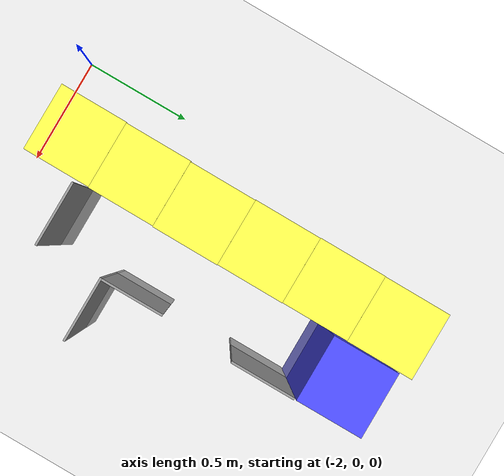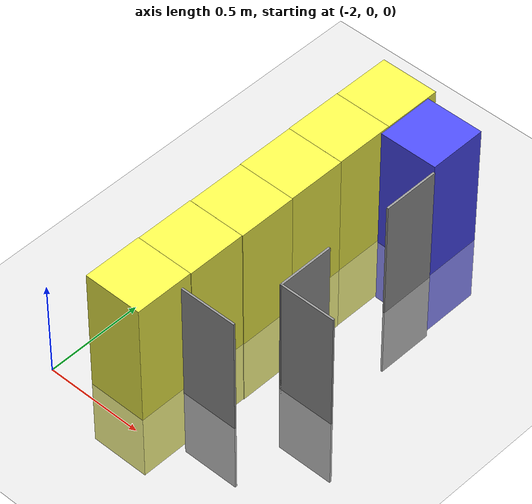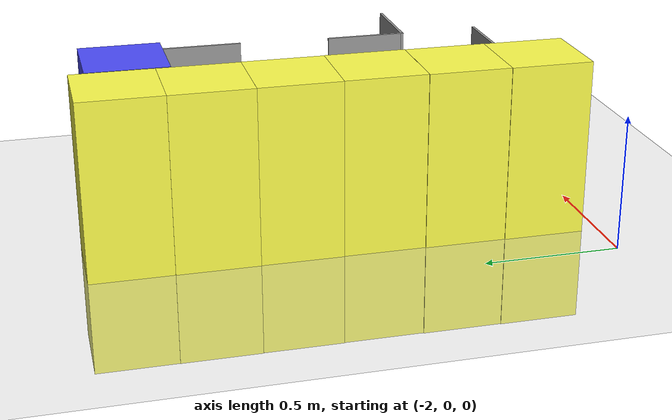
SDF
<sdf version="1.7">
 <world name="default">
  <model name="ground_plane">
   <static>1</static>
   <link name="link">
    <collision name="collision">
     <geometry><plane><normal>0 0 1</normal><size>100 100</size></plane></geometry>
     <surface><friction><ode><mu>100</mu><mu2>50</mu2></ode></friction></surface>
    </collision>
    <visual name="visual">
     <cast_shadows>0</cast_shadows>
     <geometry><plane><normal>0 0 1</normal><size>100 100</size></plane></geometry>
     <material>
      <script><uri>file://media/materials/scripts/gazebo.material</uri><name>Gazebo/Grey</name></script>
     </material>
    </visual>
   </link>
  </model>
  <model name="Box_Yellow_clone_2">
   <link name="link_0">
    <inertial>
     <mass>1</mass>
     <inertia>
      <ixx>0.166667</ixx>
      <ixy>0</ixy>
      <ixz>0</ixz>
      <iyy>0.166667</iyy>
      <iyz>0</iyz>
      <izz>0.166667</izz>
     </inertia>
    </inertial>
    <visual name="visual">
     <geometry><box><size>0.3 0.3 1.0</size></box></geometry>
     <material>
      <lighting>1</lighting>
      <script><uri>file://media/materials/scripts/gazebo.material</uri><name>Gazebo/Grey</name></script>
      <ambient>1 1 0.3 1</ambient>
      <diffuse>0.7 0.7 0.7 1</diffuse>
      <specular>0.01 0.01 0.01 1</specular>
      <emissive>0 0 0 1</emissive>
      <shader type="vertex"><normal_map>__default__</normal_map></shader>
     </material>
    </visual>
    <collision name="collision">
     <geometry><box><size>0.3 0.3 1.0</size></box></geometry>
     <surface>
      <friction>
       <ode><mu>1</mu><mu2>1</mu2><fdir1>0 0 0</fdir1><slip1>0</slip1><slip2>0</slip2></ode>
       <torsional>
        <coefficient>1</coefficient>
        <patch_radius>0</patch_radius>
        <surface_radius>0</surface_radius>
        <use_patch_radius>1</use_patch_radius>
        <ode><slip>0</slip></ode>
       </torsional>
      </friction>
      <bounce><restitution_coefficient>0</restitution_coefficient><threshold>1e+06</threshold></bounce>
      <contact>
       <collide_without_contact>0</collide_without_contact>
       <collide_without_contact_bitmask>1</collide_without_contact_bitmask>
       <collide_bitmask>1</collide_bitmask>
       <ode>
        <soft_cfm>0</soft_cfm>
        <soft_erp>0.2</soft_erp>
        <kp>1e+13</kp>
        <kd>1</kd>
        <max_vel>0.01</max_vel>
        <min_depth>0</min_depth>
       </ode>
       <bullet>
        <split_impulse>1</split_impulse>
        <split_impulse_penetration_threshold>-0.01</split_impulse_penetration_threshold>
        <soft_cfm>0</soft_cfm>
        <soft_erp>0.2</soft_erp>
        <kp>1e+13</kp>
        <kd>1</kd>
       </bullet>
      </contact>
     </surface>
    </collision>
   </link>
   <static>0</static>
   <pose>-1.67182 0.210538 0.15 -0 -0 -0.002825</pose>
  </model>
  <model name="Box_Yellow_clone_3">
   <link name="link_0">
    <inertial>
     <mass>1</mass>
     <inertia>
      <ixx>0.166667</ixx>
      <ixy>0</ixy>
      <ixz>0</ixz>
      <iyy>0.166667</iyy>
      <iyz>0</iyz>
      <izz>0.166667</izz>
     </inertia>
    </inertial>
    <visual name="visual">
     <geometry><box><size>0.3 0.3 1.0</size></box></geometry>
     <material>
      <lighting>1</lighting>
      <script><uri>file://media/materials/scripts/gazebo.material</uri><name>Gazebo/Grey</name></script>
      <ambient>1 1 0.3 1</ambient>
      <diffuse>0.7 0.7 0.7 1</diffuse>
      <specular>0.01 0.01 0.01 1</specular>
      <emissive>0 0 0 1</emissive>
      <shader type="vertex"><normal_map>__default__</normal_map></shader>
     </material>
    </visual>
    <collision name="collision">
     <geometry><box><size>0.3 0.3 1.0</size></box></geometry>
     <surface>
      <friction>
       <ode><mu>1</mu><mu2>1</mu2><fdir1>0 0 0</fdir1><slip1>0</slip1><slip2>0</slip2></ode>
       <torsional>
        <coefficient>1</coefficient>
        <patch_radius>0</patch_radius>
        <surface_radius>0</surface_radius>
        <use_patch_radius>1</use_patch_radius>
        <ode><slip>0</slip></ode>
       </torsional>
      </friction>
      <bounce><restitution_coefficient>0</restitution_coefficient><threshold>1e+06</threshold></bounce>
      <contact>
       <collide_without_contact>0</collide_without_contact>
       <collide_without_contact_bitmask>1</collide_without_contact_bitmask>
       <collide_bitmask>1</collide_bitmask>
       <ode>
        <soft_cfm>0</soft_cfm>
        <soft_erp>0.2</soft_erp>
        <kp>1e+13</kp>
        <kd>1</kd>
        <max_vel>0.01</max_vel>
        <min_depth>0</min_depth>
       </ode>
       <bullet>
        <split_impulse>1</split_impulse>
        <split_impulse_penetration_threshold>-0.01</split_impulse_penetration_threshold>
        <soft_cfm>0</soft_cfm>
        <soft_erp>0.2</soft_erp>
        <kp>1e+13</kp>
        <kd>1</kd>
       </bullet>
      </contact>
     </surface>
    </collision>
   </link>
   <static>0</static>
   <pose>-1.66837 0.510539 0.15 0 0 -0.002799</pose>
  </model>
  <model name="Box_Yellow_clone_4">
   <link name="link_0">
    <inertial>
     <mass>1</mass>
     <inertia>
      <ixx>0.166667</ixx>
      <ixy>0</ixy>
      <ixz>0</ixz>
      <iyy>0.166667</iyy>
      <iyz>0</iyz>
      <izz>0.166667</izz>
     </inertia>
    </inertial>
    <visual name="visual">
     <geometry><box><size>0.3 0.3 1.0</size></box></geometry>
     <material>
      <lighting>1</lighting>
      <script><uri>file://media/materials/scripts/gazebo.material</uri><name>Gazebo/Grey</name></script>
      <ambient>1 1 0.3 1</ambient>
      <diffuse>0.7 0.7 0.7 1</diffuse>
      <specular>0.01 0.01 0.01 1</specular>
      <emissive>0 0 0 1</emissive>
      <shader type="vertex"><normal_map>__default__</normal_map></shader>
     </material>
    </visual>
    <collision name="collision">
     <geometry><box><size>0.3 0.3 1.0</size></box></geometry>
     <surface>
      <friction>
       <ode><mu>1</mu><mu2>1</mu2><fdir1>0 0 0</fdir1><slip1>0</slip1><slip2>0</slip2></ode>
       <torsional>
        <coefficient>1</coefficient>
        <patch_radius>0</patch_radius>
        <surface_radius>0</surface_radius>
        <use_patch_radius>1</use_patch_radius>
        <ode><slip>0</slip></ode>
       </torsional>
      </friction>
      <bounce><restitution_coefficient>0</restitution_coefficient><threshold>1e+06</threshold></bounce>
      <contact>
       <collide_without_contact>0</collide_without_contact>
       <collide_without_contact_bitmask>1</collide_without_contact_bitmask>
       <collide_bitmask>1</collide_bitmask>
       <ode>
        <soft_cfm>0</soft_cfm>
        <soft_erp>0.2</soft_erp>
        <kp>1e+13</kp>
        <kd>1</kd>
        <max_vel>0.01</max_vel>
        <min_depth>0</min_depth>
       </ode>
       <bullet>
        <split_impulse>1</split_impulse>
        <split_impulse_penetration_threshold>-0.01</split_impulse_penetration_threshold>
        <soft_cfm>0</soft_cfm>
        <soft_erp>0.2</soft_erp>
        <kp>1e+13</kp>
        <kd>1</kd>
       </bullet>
      </contact>
     </surface>
    </collision>
   </link>
   <static>0</static>
   <pose>-1.66457 0.810599 0.15 -0 -0 -0.003185</pose>
  </model>
  <model name="Box_Yellow_clone_5">
   <link name="link_0">
    <inertial>
     <mass>1</mass>
     <inertia>
      <ixx>0.166667</ixx>
      <ixy>0</ixy>
      <ixz>0</ixz>
      <iyy>0.166667</iyy>
      <iyz>0</iyz>
      <izz>0.166667</izz>
     </inertia>
    </inertial>
    <visual name="visual">
     <geometry><box><size>0.3 0.3 1.0</size></box></geometry>
     <material>
      <lighting>1</lighting>
      <script><uri>file://media/materials/scripts/gazebo.material</uri><name>Gazebo/Grey</name></script>
      <ambient>1 1 0.3 1</ambient>
      <diffuse>0.7 0.7 0.7 1</diffuse>
      <specular>0.01 0.01 0.01 1</specular>
      <emissive>0 0 0 1</emissive>
      <shader type="vertex"><normal_map>__default__</normal_map></shader>
     </material>
    </visual>
    <collision name="collision">
     <geometry><box><size>0.3 0.3 1.0</size></box></geometry>
     <surface>
      <friction>
       <ode><mu>1</mu><mu2>1</mu2><fdir1>0 0 0</fdir1><slip1>0</slip1><slip2>0</slip2></ode>
       <torsional>
        <coefficient>1</coefficient>
        <patch_radius>0</patch_radius>
        <surface_radius>0</surface_radius>
        <use_patch_radius>1</use_patch_radius>
        <ode><slip>0</slip></ode>
       </torsional>
      </friction>
      <bounce><restitution_coefficient>0</restitution_coefficient><threshold>1e+06</threshold></bounce>
      <contact>
       <collide_without_contact>0</collide_without_contact>
       <collide_without_contact_bitmask>1</collide_without_contact_bitmask>
       <collide_bitmask>1</collide_bitmask>
       <ode>
        <soft_cfm>0</soft_cfm>
        <soft_erp>0.2</soft_erp>
        <kp>1e+13</kp>
        <kd>1</kd>
        <max_vel>0.01</max_vel>
        <min_depth>0</min_depth>
       </ode>
       <bullet>
        <split_impulse>1</split_impulse>
        <split_impulse_penetration_threshold>-0.01</split_impulse_penetration_threshold>
        <soft_cfm>0</soft_cfm>
        <soft_erp>0.2</soft_erp>
        <kp>1e+13</kp>
        <kd>1</kd>
       </bullet>
      </contact>
     </surface>
    </collision>
   </link>
   <static>0</static>
   <pose>-1.66577 1.11061 0.150001 2e-06 2e-06 -0.003163</pose>
  </model>
  <model name="Box_Yellow_clone_6">
   <link name="link_0">
    <inertial>
     <mass>1</mass>
     <inertia>
      <ixx>0.166667</ixx>
      <ixy>0</ixy>
      <ixz>0</ixz>
      <iyy>0.166667</iyy>
      <iyz>0</iyz>
      <izz>0.166667</izz>
     </inertia>
    </inertial>
    <visual name="visual">
     <geometry><box><size>0.3 0.3 1.0</size></box></geometry>
     <material>
      <lighting>1</lighting>
      <script><uri>file://media/materials/scripts/gazebo.material</uri><name>Gazebo/Grey</name></script>
      <ambient>1 1 0.3 1</ambient>
      <diffuse>0.7 0.7 0.7 1</diffuse>
      <specular>0.01 0.01 0.01 1</specular>
      <emissive>0 0 0 1</emissive>
      <shader type="vertex"><normal_map>__default__</normal_map></shader>
     </material>
    </visual>
    <collision name="collision">
     <geometry><box><size>0.3 0.3 1.0</size></box></geometry>
     <surface>
      <friction>
       <ode><mu>1</mu><mu2>1</mu2><fdir1>0 0 0</fdir1><slip1>0</slip1><slip2>0</slip2></ode>
       <torsional>
        <coefficient>1</coefficient>
        <patch_radius>0</patch_radius>
        <surface_radius>0</surface_radius>
        <use_patch_radius>1</use_patch_radius>
        <ode><slip>0</slip></ode>
       </torsional>
      </friction>
      <bounce><restitution_coefficient>0</restitution_coefficient><threshold>1e+06</threshold></bounce>
      <contact>
       <collide_without_contact>0</collide_without_contact>
       <collide_without_contact_bitmask>1</collide_without_contact_bitmask>
       <collide_bitmask>1</collide_bitmask>
       <ode>
        <soft_cfm>0</soft_cfm>
        <soft_erp>0.2</soft_erp>
        <kp>1e+13</kp>
        <kd>1</kd>
        <max_vel>0.01</max_vel>
        <min_depth>0</min_depth>
       </ode>
       <bullet>
        <split_impulse>1</split_impulse>
        <split_impulse_penetration_threshold>-0.01</split_impulse_penetration_threshold>
        <soft_cfm>0</soft_cfm>
        <soft_erp>0.2</soft_erp>
        <kp>1e+13</kp>
        <kd>1</kd>
       </bullet>
      </contact>
     </surface>
    </collision>
   </link>
   <static>0</static>
   <pose>-1.66638 1.41064 0.15 0 -0 -0.00316</pose>
  </model>
  <model name="Box_Yellow_clone_7">
   <link name="link_0">
    <inertial>
     <mass>1</mass>
     <inertia>
      <ixx>0.166667</ixx>
      <ixy>0</ixy>
      <ixz>0</ixz>
      <iyy>0.166667</iyy>
      <iyz>0</iyz>
      <izz>0.166667</izz>
     </inertia>
    </inertial>
    <visual name="visual">
     <geometry><box><size>0.3 0.3 1.0</size></box></geometry>
     <material>
      <lighting>1</lighting>
      <script><uri>file://media/materials/scripts/gazebo.material</uri><name>Gazebo/Grey</name></script>
      <ambient>1 1 0.3 1</ambient>
      <diffuse>0.7 0.7 0.7 1</diffuse>
      <specular>0.01 0.01 0.01 1</specular>
      <emissive>0 0 0 1</emissive>
      <shader type="vertex"><normal_map>__default__</normal_map></shader>
     </material>
    </visual>
    <collision name="collision">
     <geometry><box><size>0.3 0.3 1.0</size></box></geometry>
     <surface>
      <friction>
       <ode><mu>1</mu><mu2>1</mu2><fdir1>0 0 0</fdir1><slip1>0</slip1><slip2>0</slip2></ode>
       <torsional>
        <coefficient>1</coefficient>
        <patch_radius>0</patch_radius>
        <surface_radius>0</surface_radius>
        <use_patch_radius>1</use_patch_radius>
        <ode><slip>0</slip></ode>
       </torsional>
      </friction>
      <bounce><restitution_coefficient>0</restitution_coefficient><threshold>1e+06</threshold></bounce>
      <contact>
       <collide_without_contact>0</collide_without_contact>
       <collide_without_contact_bitmask>1</collide_without_contact_bitmask>
       <collide_bitmask>1</collide_bitmask>
       <ode>
        <soft_cfm>0</soft_cfm>
        <soft_erp>0.2</soft_erp>
        <kp>1e+13</kp>
        <kd>1</kd>
        <max_vel>0.01</max_vel>
        <min_depth>0</min_depth>
       </ode>
       <bullet>
        <split_impulse>1</split_impulse>
        <split_impulse_penetration_threshold>-0.01</split_impulse_penetration_threshold>
        <soft_cfm>0</soft_cfm>
        <soft_erp>0.2</soft_erp>
        <kp>1e+13</kp>
        <kd>1</kd>
       </bullet>
      </contact>
     </surface>
    </collision>
   </link>
   <static>0</static>
   <pose>-1.66443 1.71065 0.15 0 0 -0.003159</pose>
  </model>
  <model name="Box_Blue_clone_7">
   <link name="link_0">
    <inertial>
     <mass>1</mass>
     <inertia>
      <ixx>0.166667</ixx>
      <ixy>0</ixy>
      <ixz>0</ixz>
      <iyy>0.166667</iyy>
      <iyz>0</iyz>
      <izz>0.166667</izz>
     </inertia>
    </inertial>
    <visual name="visual">
     <geometry><box><size>0.3 0.3 1.0</size></box></geometry>
     <material>
      <lighting>1</lighting>
      <script><uri>file://media/materials/scripts/gazebo.material</uri><name>Gazebo/Grey</name></script>
      <ambient>0.3 0.3 1 1</ambient>
      <diffuse>0.7 0.7 0.7 1</diffuse>
      <specular>0.01 0.01 0.01 1</specular>
      <emissive>0 0 0 1</emissive>
      <shader type="vertex"><normal_map>__default__</normal_map></shader>
     </material>
    </visual>
    <collision name="collision">
     <geometry><box><size>0.3 0.3 1.0</size></box></geometry>
     <surface>
      <friction>
       <ode><mu>1</mu><mu2>1</mu2><fdir1>0 0 0</fdir1><slip1>0</slip1><slip2>0</slip2></ode>
       <torsional>
        <coefficient>1</coefficient>
        <patch_radius>0</patch_radius>
        <surface_radius>0</surface_radius>
        <use_patch_radius>1</use_patch_radius>
        <ode><slip>0</slip></ode>
       </torsional>
      </friction>
      <bounce><restitution_coefficient>0</restitution_coefficient><threshold>1e+06</threshold></bounce>
      <contact>
       <collide_without_contact>0</collide_without_contact>
       <collide_without_contact_bitmask>1</collide_without_contact_bitmask>
       <collide_bitmask>1</collide_bitmask>
       <ode>
        <soft_cfm>0</soft_cfm>
        <soft_erp>0.2</soft_erp>
        <kp>1e+13</kp>
        <kd>1</kd>
        <max_vel>0.01</max_vel>
        <min_depth>0</min_depth>
       </ode>
       <bullet>
        <split_impulse>1</split_impulse>
        <split_impulse_penetration_threshold>-0.01</split_impulse_penetration_threshold>
        <soft_cfm>0</soft_cfm>
        <soft_erp>0.2</soft_erp>
        <kp>1e+13</kp>
        <kd>1</kd>
       </bullet>
      </contact>
     </surface>
    </collision>
   </link>
   <static>0</static>
   <pose>-1.3598 1.65522 0.15 0 -0 0.001322</pose>
  </model>
  <model name="Maze_I_V">
   <pose>-1.35964 0.293545 0 0 -0 0</pose>
   <link name="Wall_0">
    <collision name="Wall_0_Collision">
     <geometry><box><size>0.294 0.01 1.0</size></box></geometry>
     <pose>0 0 0.125 0 -0 0</pose>
    </collision>
    <visual name="Wall_0_Visual">
     <pose>0 0 0.125 0 -0 0</pose>
     <geometry><box><size>0.294 0.01 1.0</size></box></geometry>
     <material>
      <script><uri>file://media/materials/scripts/gazebo.material</uri><name>Gazebo/Grey</name></script>
      <ambient>1 1 1 1</ambient>
     </material>
     <meta><layer>0</layer></meta>
    </visual>
   </link>
   <static>1</static>
  </model>
  <model name="Maze_L_RB">
   <pose>-1.08633 0.727561 0 0 -0 0</pose>
   <link name="Wall_0">
    <collision name="Wall_0_Collision">
     <geometry><box><size>0.294 0.01 1.0</size></box></geometry>
     <pose>0 0 0.125 0 -0 0</pose>
    </collision>
    <visual name="Wall_0_Visual">
     <pose>0 0 0.125 0 -0 0</pose>
     <geometry><box><size>0.294 0.01 1.0</size></box></geometry>
     <material>
      <script><uri>file://media/materials/scripts/gazebo.material</uri><name>Gazebo/Grey</name></script>
      <ambient>1 1 1 1</ambient>
     </material>
     <meta><layer>0</layer></meta>
    </visual>
    <pose>0 -0.142 0 0 -0 0</pose>
   </link>
   <link name="Wall_2">
    <collision name="Wall_2_Collision">
     <geometry><box><size>0.294 0.01 1.0</size></box></geometry>
     <pose>0 0 0.125 0 -0 0</pose>
    </collision>
    <visual name="Wall_2_Visual">
     <pose>0 0 0.125 0 -0 0</pose>
     <geometry><box><size>0.294 0.01 1.0</size></box></geometry>
     <material>
      <script><uri>file://media/materials/scripts/gazebo.material</uri><name>Gazebo/Grey</name></script>
      <ambient>1 1 1 1</ambient>
     </material>
     <meta><layer>0</layer></meta>
    </visual>
    <pose>-0.142 0 0 0 -0 1.5708</pose>
   </link>
   <static>1</static>
  </model>
  <model name="Maze_I_H_clone_6">
   <pose>-1.20777 1.35352 0 0 -0 0</pose>
   <link name="Wall_0">
    <collision name="Wall_0_Collision">
     <geometry><box><size>0.294 0.01 1.0</size></box></geometry>
     <pose>0 0 0.125 0 -0 0</pose>
    </collision>
    <visual name="Wall_0_Visual">
     <pose>0 0 0.125 0 -0 0</pose>
     <geometry><box><size>0.294 0.01 1.0</size></box></geometry>
     <material>
      <script><uri>file://media/materials/scripts/gazebo.material</uri><name>Gazebo/Grey</name></script>
      <ambient>1 1 1 1</ambient>
     </material>
     <meta><layer>0</layer></meta>
    </visual>
    <pose>0 0 0 0 -0 1.5708</pose>
   </link>
   <static>1</static>
  </model>
 </world>
</sdf>
